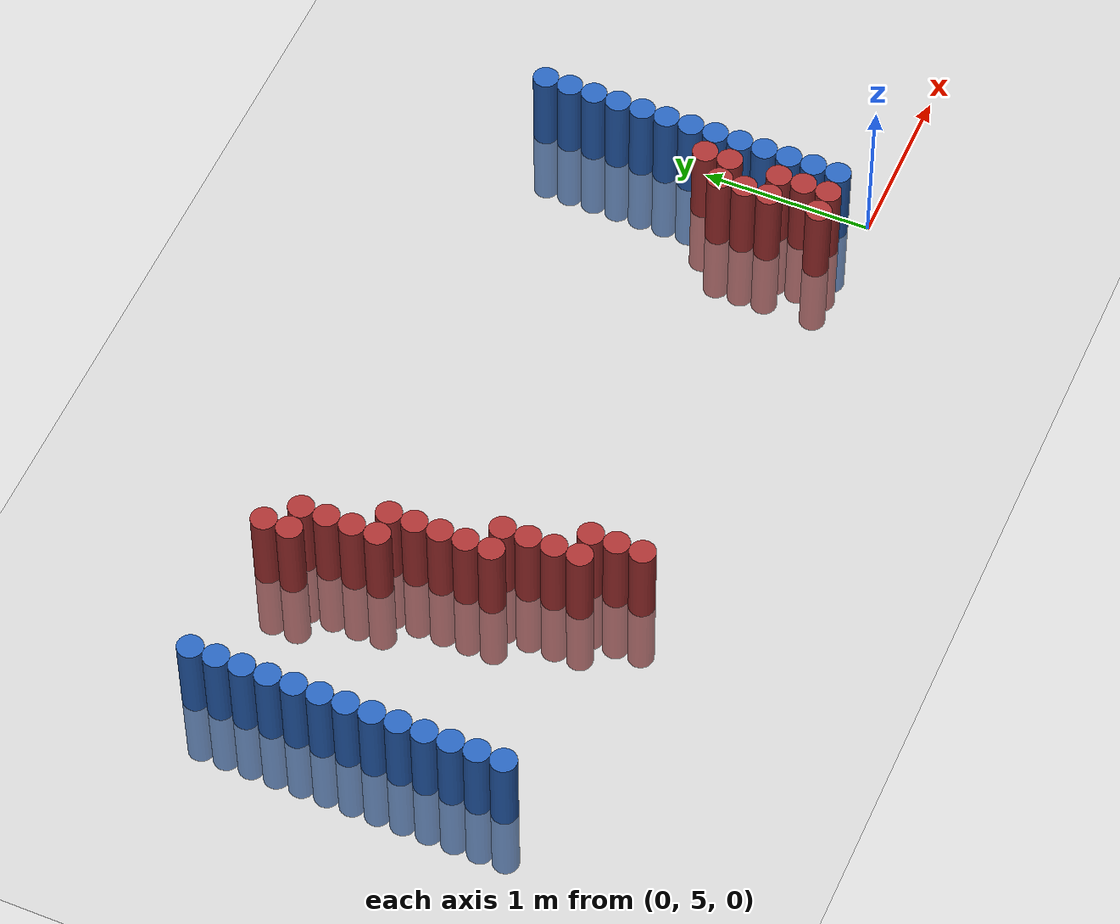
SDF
<sdf version="1.6">
 <world name="default">
  <model name="ground_plane">
   <static>1</static>
   <link name="link">
    <collision name="collision">
     <geometry><plane><normal>0 0 1</normal><size>100 100</size></plane></geometry>
     <surface><friction><ode><mu>100</mu><mu2>50</mu2></ode></friction></surface>
    </collision>
    <visual name="visual">
     <cast_shadows>0</cast_shadows>
     <geometry><plane><normal>0 0 1</normal><size>100 100</size></plane></geometry>
     <material>
      <script><uri>file://media/materials/scripts/gazebo.material</uri><name>Gazebo/Grey</name></script>
     </material>
    </visual>
   </link>
  </model>
  <model name="unit_cylinder_97">
   <static>1</static>
   <pose>-4.425000 5.325000 0.000000 0.000000 0.000000 0.000000</pose>
   <link name="link">
    <inertial>
     <mass>1</mass>
     <inertia><ixx>0.145833</ixx><ixy>0</ixy><ixz>0</ixz><iyy>0.145833</iyy><iyz>0</iyz><izz>0.125</izz></inertia>
    </inertial>
    <collision name="collision">
     <geometry><cylinder><radius>0.075000</radius><length>1</length></cylinder></geometry>
    </collision>
    <visual name="visual">
     <geometry><cylinder><radius>0.075000</radius><length>1</length></cylinder></geometry>
     <material>
      <ambient>0.152000 0.379000 0.720000 1</ambient>
      <diffuse>0.152000 0.379000 0.720000 1</diffuse>
     </material>
     <material>
      <script><name>Gazebo/Grey</name><uri>file://media/materials/scripts/gazebo.material</uri></script>
     </material>
    </visual>
   </link>
  </model>
  <model name="unit_cylinder_98">
   <static>1</static>
   <pose>-4.425000 5.475000 0.000000 0.000000 0.000000 0.000000</pose>
   <link name="link">
    <inertial>
     <mass>1</mass>
     <inertia><ixx>0.145833</ixx><ixy>0</ixy><ixz>0</ixz><iyy>0.145833</iyy><iyz>0</iyz><izz>0.125</izz></inertia>
    </inertial>
    <collision name="collision">
     <geometry><cylinder><radius>0.075000</radius><length>1</length></cylinder></geometry>
    </collision>
    <visual name="visual">
     <geometry><cylinder><radius>0.075000</radius><length>1</length></cylinder></geometry>
     <material>
      <ambient>0.152000 0.379000 0.720000 1</ambient>
      <diffuse>0.152000 0.379000 0.720000 1</diffuse>
     </material>
     <material>
      <script><name>Gazebo/Grey</name><uri>file://media/materials/scripts/gazebo.material</uri></script>
     </material>
    </visual>
   </link>
  </model>
  <model name="unit_cylinder_99">
   <static>1</static>
   <pose>-4.425000 5.625000 0.000000 0.000000 0.000000 0.000000</pose>
   <link name="link">
    <inertial>
     <mass>1</mass>
     <inertia><ixx>0.145833</ixx><ixy>0</ixy><ixz>0</ixz><iyy>0.145833</iyy><iyz>0</iyz><izz>0.125</izz></inertia>
    </inertial>
    <collision name="collision">
     <geometry><cylinder><radius>0.075000</radius><length>1</length></cylinder></geometry>
    </collision>
    <visual name="visual">
     <geometry><cylinder><radius>0.075000</radius><length>1</length></cylinder></geometry>
     <material>
      <ambient>0.152000 0.379000 0.720000 1</ambient>
      <diffuse>0.152000 0.379000 0.720000 1</diffuse>
     </material>
     <material>
      <script><name>Gazebo/Grey</name><uri>file://media/materials/scripts/gazebo.material</uri></script>
     </material>
    </visual>
   </link>
  </model>
  <model name="unit_cylinder_100">
   <static>1</static>
   <pose>-4.425000 5.775000 0.000000 0.000000 0.000000 0.000000</pose>
   <link name="link">
    <inertial>
     <mass>1</mass>
     <inertia><ixx>0.145833</ixx><ixy>0</ixy><ixz>0</ixz><iyy>0.145833</iyy><iyz>0</iyz><izz>0.125</izz></inertia>
    </inertial>
    <collision name="collision">
     <geometry><cylinder><radius>0.075000</radius><length>1</length></cylinder></geometry>
    </collision>
    <visual name="visual">
     <geometry><cylinder><radius>0.075000</radius><length>1</length></cylinder></geometry>
     <material>
      <ambient>0.152000 0.379000 0.720000 1</ambient>
      <diffuse>0.152000 0.379000 0.720000 1</diffuse>
     </material>
     <material>
      <script><name>Gazebo/Grey</name><uri>file://media/materials/scripts/gazebo.material</uri></script>
     </material>
    </visual>
   </link>
  </model>
  <model name="unit_cylinder_101">
   <static>1</static>
   <pose>-4.425000 5.925000 0.000000 0.000000 0.000000 0.000000</pose>
   <link name="link">
    <inertial>
     <mass>1</mass>
     <inertia><ixx>0.145833</ixx><ixy>0</ixy><ixz>0</ixz><iyy>0.145833</iyy><iyz>0</iyz><izz>0.125</izz></inertia>
    </inertial>
    <collision name="collision">
     <geometry><cylinder><radius>0.075000</radius><length>1</length></cylinder></geometry>
    </collision>
    <visual name="visual">
     <geometry><cylinder><radius>0.075000</radius><length>1</length></cylinder></geometry>
     <material>
      <ambient>0.152000 0.379000 0.720000 1</ambient>
      <diffuse>0.152000 0.379000 0.720000 1</diffuse>
     </material>
     <material>
      <script><name>Gazebo/Grey</name><uri>file://media/materials/scripts/gazebo.material</uri></script>
     </material>
    </visual>
   </link>
  </model>
  <model name="unit_cylinder_102">
   <static>1</static>
   <pose>-4.425000 6.075000 0.000000 0.000000 0.000000 0.000000</pose>
   <link name="link">
    <inertial>
     <mass>1</mass>
     <inertia><ixx>0.145833</ixx><ixy>0</ixy><ixz>0</ixz><iyy>0.145833</iyy><iyz>0</iyz><izz>0.125</izz></inertia>
    </inertial>
    <collision name="collision">
     <geometry><cylinder><radius>0.075000</radius><length>1</length></cylinder></geometry>
    </collision>
    <visual name="visual">
     <geometry><cylinder><radius>0.075000</radius><length>1</length></cylinder></geometry>
     <material>
      <ambient>0.152000 0.379000 0.720000 1</ambient>
      <diffuse>0.152000 0.379000 0.720000 1</diffuse>
     </material>
     <material>
      <script><name>Gazebo/Grey</name><uri>file://media/materials/scripts/gazebo.material</uri></script>
     </material>
    </visual>
   </link>
  </model>
  <model name="unit_cylinder_103">
   <static>1</static>
   <pose>-4.425000 6.225000 0.000000 0.000000 0.000000 0.000000</pose>
   <link name="link">
    <inertial>
     <mass>1</mass>
     <inertia><ixx>0.145833</ixx><ixy>0</ixy><ixz>0</ixz><iyy>0.145833</iyy><iyz>0</iyz><izz>0.125</izz></inertia>
    </inertial>
    <collision name="collision">
     <geometry><cylinder><radius>0.075000</radius><length>1</length></cylinder></geometry>
    </collision>
    <visual name="visual">
     <geometry><cylinder><radius>0.075000</radius><length>1</length></cylinder></geometry>
     <material>
      <ambient>0.152000 0.379000 0.720000 1</ambient>
      <diffuse>0.152000 0.379000 0.720000 1</diffuse>
     </material>
     <material>
      <script><name>Gazebo/Grey</name><uri>file://media/materials/scripts/gazebo.material</uri></script>
     </material>
    </visual>
   </link>
  </model>
  <model name="unit_cylinder_104">
   <static>1</static>
   <pose>-4.425000 6.375000 0.000000 0.000000 0.000000 0.000000</pose>
   <link name="link">
    <inertial>
     <mass>1</mass>
     <inertia><ixx>0.145833</ixx><ixy>0</ixy><ixz>0</ixz><iyy>0.145833</iyy><iyz>0</iyz><izz>0.125</izz></inertia>
    </inertial>
    <collision name="collision">
     <geometry><cylinder><radius>0.075000</radius><length>1</length></cylinder></geometry>
    </collision>
    <visual name="visual">
     <geometry><cylinder><radius>0.075000</radius><length>1</length></cylinder></geometry>
     <material>
      <ambient>0.152000 0.379000 0.720000 1</ambient>
      <diffuse>0.152000 0.379000 0.720000 1</diffuse>
     </material>
     <material>
      <script><name>Gazebo/Grey</name><uri>file://media/materials/scripts/gazebo.material</uri></script>
     </material>
    </visual>
   </link>
  </model>
  <model name="unit_cylinder_105">
   <static>1</static>
   <pose>-4.425000 6.525000 0.000000 0.000000 0.000000 0.000000</pose>
   <link name="link">
    <inertial>
     <mass>1</mass>
     <inertia><ixx>0.145833</ixx><ixy>0</ixy><ixz>0</ixz><iyy>0.145833</iyy><iyz>0</iyz><izz>0.125</izz></inertia>
    </inertial>
    <collision name="collision">
     <geometry><cylinder><radius>0.075000</radius><length>1</length></cylinder></geometry>
    </collision>
    <visual name="visual">
     <geometry><cylinder><radius>0.075000</radius><length>1</length></cylinder></geometry>
     <material>
      <ambient>0.152000 0.379000 0.720000 1</ambient>
      <diffuse>0.152000 0.379000 0.720000 1</diffuse>
     </material>
     <material>
      <script><name>Gazebo/Grey</name><uri>file://media/materials/scripts/gazebo.material</uri></script>
     </material>
    </visual>
   </link>
  </model>
  <model name="unit_cylinder_106">
   <static>1</static>
   <pose>-4.425000 6.675000 0.000000 0.000000 0.000000 0.000000</pose>
   <link name="link">
    <inertial>
     <mass>1</mass>
     <inertia><ixx>0.145833</ixx><ixy>0</ixy><ixz>0</ixz><iyy>0.145833</iyy><iyz>0</iyz><izz>0.125</izz></inertia>
    </inertial>
    <collision name="collision">
     <geometry><cylinder><radius>0.075000</radius><length>1</length></cylinder></geometry>
    </collision>
    <visual name="visual">
     <geometry><cylinder><radius>0.075000</radius><length>1</length></cylinder></geometry>
     <material>
      <ambient>0.152000 0.379000 0.720000 1</ambient>
      <diffuse>0.152000 0.379000 0.720000 1</diffuse>
     </material>
     <material>
      <script><name>Gazebo/Grey</name><uri>file://media/materials/scripts/gazebo.material</uri></script>
     </material>
    </visual>
   </link>
  </model>
  <model name="unit_cylinder_107">
   <static>1</static>
   <pose>-4.425000 6.825000 0.000000 0.000000 0.000000 0.000000</pose>
   <link name="link">
    <inertial>
     <mass>1</mass>
     <inertia><ixx>0.145833</ixx><ixy>0</ixy><ixz>0</ixz><iyy>0.145833</iyy><iyz>0</iyz><izz>0.125</izz></inertia>
    </inertial>
    <collision name="collision">
     <geometry><cylinder><radius>0.075000</radius><length>1</length></cylinder></geometry>
    </collision>
    <visual name="visual">
     <geometry><cylinder><radius>0.075000</radius><length>1</length></cylinder></geometry>
     <material>
      <ambient>0.152000 0.379000 0.720000 1</ambient>
      <diffuse>0.152000 0.379000 0.720000 1</diffuse>
     </material>
     <material>
      <script><name>Gazebo/Grey</name><uri>file://media/materials/scripts/gazebo.material</uri></script>
     </material>
    </visual>
   </link>
  </model>
  <model name="unit_cylinder_108">
   <static>1</static>
   <pose>-4.425000 6.975000 0.000000 0.000000 0.000000 0.000000</pose>
   <link name="link">
    <inertial>
     <mass>1</mass>
     <inertia><ixx>0.145833</ixx><ixy>0</ixy><ixz>0</ixz><iyy>0.145833</iyy><iyz>0</iyz><izz>0.125</izz></inertia>
    </inertial>
    <collision name="collision">
     <geometry><cylinder><radius>0.075000</radius><length>1</length></cylinder></geometry>
    </collision>
    <visual name="visual">
     <geometry><cylinder><radius>0.075000</radius><length>1</length></cylinder></geometry>
     <material>
      <ambient>0.152000 0.379000 0.720000 1</ambient>
      <diffuse>0.152000 0.379000 0.720000 1</diffuse>
     </material>
     <material>
      <script><name>Gazebo/Grey</name><uri>file://media/materials/scripts/gazebo.material</uri></script>
     </material>
    </visual>
   </link>
  </model>
  <model name="unit_cylinder_109">
   <static>1</static>
   <pose>-4.425000 7.125000 0.000000 0.000000 0.000000 0.000000</pose>
   <link name="link">
    <inertial>
     <mass>1</mass>
     <inertia><ixx>0.145833</ixx><ixy>0</ixy><ixz>0</ixz><iyy>0.145833</iyy><iyz>0</iyz><izz>0.125</izz></inertia>
    </inertial>
    <collision name="collision">
     <geometry><cylinder><radius>0.075000</radius><length>1</length></cylinder></geometry>
    </collision>
    <visual name="visual">
     <geometry><cylinder><radius>0.075000</radius><length>1</length></cylinder></geometry>
     <material>
      <ambient>0.152000 0.379000 0.720000 1</ambient>
      <diffuse>0.152000 0.379000 0.720000 1</diffuse>
     </material>
     <material>
      <script><name>Gazebo/Grey</name><uri>file://media/materials/scripts/gazebo.material</uri></script>
     </material>
    </visual>
   </link>
  </model>
  <model name="unit_cylinder_142">
   <static>1</static>
   <pose>-3.525000 6.975000 0.000000 0.000000 0.000000 0.000000</pose>
   <link name="link">
    <inertial>
     <mass>1</mass>
     <inertia><ixx>0.145833</ixx><ixy>0</ixy><ixz>0</ixz><iyy>0.145833</iyy><iyz>0</iyz><izz>0.125</izz></inertia>
    </inertial>
    <collision name="collision">
     <geometry><cylinder><radius>0.075000</radius><length>1</length></cylinder></geometry>
    </collision>
    <visual name="visual">
     <geometry><cylinder><radius>0.075000</radius><length>1</length></cylinder></geometry>
     <material>
      <ambient>0.648000 0.192000 0.192000 1</ambient>
      <diffuse>0.648000 0.192000 0.192000 1</diffuse>
     </material>
     <material>
      <script><name>Gazebo/Grey</name><uri>file://media/materials/scripts/gazebo.material</uri></script>
     </material>
    </visual>
   </link>
  </model>
  <model name="unit_cylinder_143">
   <static>1</static>
   <pose>-3.525000 7.125000 0.000000 0.000000 0.000000 0.000000</pose>
   <link name="link">
    <inertial>
     <mass>1</mass>
     <inertia><ixx>0.145833</ixx><ixy>0</ixy><ixz>0</ixz><iyy>0.145833</iyy><iyz>0</iyz><izz>0.125</izz></inertia>
    </inertial>
    <collision name="collision">
     <geometry><cylinder><radius>0.075000</radius><length>1</length></cylinder></geometry>
    </collision>
    <visual name="visual">
     <geometry><cylinder><radius>0.075000</radius><length>1</length></cylinder></geometry>
     <material>
      <ambient>0.648000 0.192000 0.192000 1</ambient>
      <diffuse>0.648000 0.192000 0.192000 1</diffuse>
     </material>
     <material>
      <script><name>Gazebo/Grey</name><uri>file://media/materials/scripts/gazebo.material</uri></script>
     </material>
    </visual>
   </link>
  </model>
  <model name="unit_cylinder_151">
   <static>1</static>
   <pose>-3.375000 6.525000 0.000000 0.000000 0.000000 0.000000</pose>
   <link name="link">
    <inertial>
     <mass>1</mass>
     <inertia><ixx>0.145833</ixx><ixy>0</ixy><ixz>0</ixz><iyy>0.145833</iyy><iyz>0</iyz><izz>0.125</izz></inertia>
    </inertial>
    <collision name="collision">
     <geometry><cylinder><radius>0.075000</radius><length>1</length></cylinder></geometry>
    </collision>
    <visual name="visual">
     <geometry><cylinder><radius>0.075000</radius><length>1</length></cylinder></geometry>
     <material>
      <ambient>0.648000 0.192000 0.192000 1</ambient>
      <diffuse>0.648000 0.192000 0.192000 1</diffuse>
     </material>
     <material>
      <script><name>Gazebo/Grey</name><uri>file://media/materials/scripts/gazebo.material</uri></script>
     </material>
    </visual>
   </link>
  </model>
  <model name="unit_cylinder_152">
   <static>1</static>
   <pose>-3.375000 6.675000 0.000000 0.000000 0.000000 0.000000</pose>
   <link name="link">
    <inertial>
     <mass>1</mass>
     <inertia><ixx>0.145833</ixx><ixy>0</ixy><ixz>0</ixz><iyy>0.145833</iyy><iyz>0</iyz><izz>0.125</izz></inertia>
    </inertial>
    <collision name="collision">
     <geometry><cylinder><radius>0.075000</radius><length>1</length></cylinder></geometry>
    </collision>
    <visual name="visual">
     <geometry><cylinder><radius>0.075000</radius><length>1</length></cylinder></geometry>
     <material>
      <ambient>0.648000 0.192000 0.192000 1</ambient>
      <diffuse>0.648000 0.192000 0.192000 1</diffuse>
     </material>
     <material>
      <script><name>Gazebo/Grey</name><uri>file://media/materials/scripts/gazebo.material</uri></script>
     </material>
    </visual>
   </link>
  </model>
  <model name="unit_cylinder_153">
   <static>1</static>
   <pose>-3.375000 6.825000 0.000000 0.000000 0.000000 0.000000</pose>
   <link name="link">
    <inertial>
     <mass>1</mass>
     <inertia><ixx>0.145833</ixx><ixy>0</ixy><ixz>0</ixz><iyy>0.145833</iyy><iyz>0</iyz><izz>0.125</izz></inertia>
    </inertial>
    <collision name="collision">
     <geometry><cylinder><radius>0.075000</radius><length>1</length></cylinder></geometry>
    </collision>
    <visual name="visual">
     <geometry><cylinder><radius>0.075000</radius><length>1</length></cylinder></geometry>
     <material>
      <ambient>0.648000 0.192000 0.192000 1</ambient>
      <diffuse>0.648000 0.192000 0.192000 1</diffuse>
     </material>
     <material>
      <script><name>Gazebo/Grey</name><uri>file://media/materials/scripts/gazebo.material</uri></script>
     </material>
    </visual>
   </link>
  </model>
  <model name="unit_cylinder_154">
   <static>1</static>
   <pose>-3.375000 6.975000 0.000000 0.000000 0.000000 0.000000</pose>
   <link name="link">
    <inertial>
     <mass>1</mass>
     <inertia><ixx>0.145833</ixx><ixy>0</ixy><ixz>0</ixz><iyy>0.145833</iyy><iyz>0</iyz><izz>0.125</izz></inertia>
    </inertial>
    <collision name="collision">
     <geometry><cylinder><radius>0.075000</radius><length>1</length></cylinder></geometry>
    </collision>
    <visual name="visual">
     <geometry><cylinder><radius>0.075000</radius><length>1</length></cylinder></geometry>
     <material>
      <ambient>0.648000 0.192000 0.192000 1</ambient>
      <diffuse>0.648000 0.192000 0.192000 1</diffuse>
     </material>
     <material>
      <script><name>Gazebo/Grey</name><uri>file://media/materials/scripts/gazebo.material</uri></script>
     </material>
    </visual>
   </link>
  </model>
  <model name="unit_cylinder_160">
   <static>1</static>
   <pose>-3.225000 5.925000 0.000000 0.000000 0.000000 0.000000</pose>
   <link name="link">
    <inertial>
     <mass>1</mass>
     <inertia><ixx>0.145833</ixx><ixy>0</ixy><ixz>0</ixz><iyy>0.145833</iyy><iyz>0</iyz><izz>0.125</izz></inertia>
    </inertial>
    <collision name="collision">
     <geometry><cylinder><radius>0.075000</radius><length>1</length></cylinder></geometry>
    </collision>
    <visual name="visual">
     <geometry><cylinder><radius>0.075000</radius><length>1</length></cylinder></geometry>
     <material>
      <ambient>0.648000 0.192000 0.192000 1</ambient>
      <diffuse>0.648000 0.192000 0.192000 1</diffuse>
     </material>
     <material>
      <script><name>Gazebo/Grey</name><uri>file://media/materials/scripts/gazebo.material</uri></script>
     </material>
    </visual>
   </link>
  </model>
  <model name="unit_cylinder_161">
   <static>1</static>
   <pose>-3.225000 6.075000 0.000000 0.000000 0.000000 0.000000</pose>
   <link name="link">
    <inertial>
     <mass>1</mass>
     <inertia><ixx>0.145833</ixx><ixy>0</ixy><ixz>0</ixz><iyy>0.145833</iyy><iyz>0</iyz><izz>0.125</izz></inertia>
    </inertial>
    <collision name="collision">
     <geometry><cylinder><radius>0.075000</radius><length>1</length></cylinder></geometry>
    </collision>
    <visual name="visual">
     <geometry><cylinder><radius>0.075000</radius><length>1</length></cylinder></geometry>
     <material>
      <ambient>0.648000 0.192000 0.192000 1</ambient>
      <diffuse>0.648000 0.192000 0.192000 1</diffuse>
     </material>
     <material>
      <script><name>Gazebo/Grey</name><uri>file://media/materials/scripts/gazebo.material</uri></script>
     </material>
    </visual>
   </link>
  </model>
  <model name="unit_cylinder_162">
   <static>1</static>
   <pose>-3.225000 6.225000 0.000000 0.000000 0.000000 0.000000</pose>
   <link name="link">
    <inertial>
     <mass>1</mass>
     <inertia><ixx>0.145833</ixx><ixy>0</ixy><ixz>0</ixz><iyy>0.145833</iyy><iyz>0</iyz><izz>0.125</izz></inertia>
    </inertial>
    <collision name="collision">
     <geometry><cylinder><radius>0.075000</radius><length>1</length></cylinder></geometry>
    </collision>
    <visual name="visual">
     <geometry><cylinder><radius>0.075000</radius><length>1</length></cylinder></geometry>
     <material>
      <ambient>0.648000 0.192000 0.192000 1</ambient>
      <diffuse>0.648000 0.192000 0.192000 1</diffuse>
     </material>
     <material>
      <script><name>Gazebo/Grey</name><uri>file://media/materials/scripts/gazebo.material</uri></script>
     </material>
    </visual>
   </link>
  </model>
  <model name="unit_cylinder_163">
   <static>1</static>
   <pose>-3.225000 6.375000 0.000000 0.000000 0.000000 0.000000</pose>
   <link name="link">
    <inertial>
     <mass>1</mass>
     <inertia><ixx>0.145833</ixx><ixy>0</ixy><ixz>0</ixz><iyy>0.145833</iyy><iyz>0</iyz><izz>0.125</izz></inertia>
    </inertial>
    <collision name="collision">
     <geometry><cylinder><radius>0.075000</radius><length>1</length></cylinder></geometry>
    </collision>
    <visual name="visual">
     <geometry><cylinder><radius>0.075000</radius><length>1</length></cylinder></geometry>
     <material>
      <ambient>0.648000 0.192000 0.192000 1</ambient>
      <diffuse>0.648000 0.192000 0.192000 1</diffuse>
     </material>
     <material>
      <script><name>Gazebo/Grey</name><uri>file://media/materials/scripts/gazebo.material</uri></script>
     </material>
    </visual>
   </link>
  </model>
  <model name="unit_cylinder_164">
   <static>1</static>
   <pose>-3.225000 6.525000 0.000000 0.000000 0.000000 0.000000</pose>
   <link name="link">
    <inertial>
     <mass>1</mass>
     <inertia><ixx>0.145833</ixx><ixy>0</ixy><ixz>0</ixz><iyy>0.145833</iyy><iyz>0</iyz><izz>0.125</izz></inertia>
    </inertial>
    <collision name="collision">
     <geometry><cylinder><radius>0.075000</radius><length>1</length></cylinder></geometry>
    </collision>
    <visual name="visual">
     <geometry><cylinder><radius>0.075000</radius><length>1</length></cylinder></geometry>
     <material>
      <ambient>0.648000 0.192000 0.192000 1</ambient>
      <diffuse>0.648000 0.192000 0.192000 1</diffuse>
     </material>
     <material>
      <script><name>Gazebo/Grey</name><uri>file://media/materials/scripts/gazebo.material</uri></script>
     </material>
    </visual>
   </link>
  </model>
  <model name="unit_cylinder_168">
   <static>1</static>
   <pose>-3.075000 5.475000 0.000000 0.000000 0.000000 0.000000</pose>
   <link name="link">
    <inertial>
     <mass>1</mass>
     <inertia><ixx>0.145833</ixx><ixy>0</ixy><ixz>0</ixz><iyy>0.145833</iyy><iyz>0</iyz><izz>0.125</izz></inertia>
    </inertial>
    <collision name="collision">
     <geometry><cylinder><radius>0.075000</radius><length>1</length></cylinder></geometry>
    </collision>
    <visual name="visual">
     <geometry><cylinder><radius>0.075000</radius><length>1</length></cylinder></geometry>
     <material>
      <ambient>0.648000 0.192000 0.192000 1</ambient>
      <diffuse>0.648000 0.192000 0.192000 1</diffuse>
     </material>
     <material>
      <script><name>Gazebo/Grey</name><uri>file://media/materials/scripts/gazebo.material</uri></script>
     </material>
    </visual>
   </link>
  </model>
  <model name="unit_cylinder_169">
   <static>1</static>
   <pose>-3.075000 5.625000 0.000000 0.000000 0.000000 0.000000</pose>
   <link name="link">
    <inertial>
     <mass>1</mass>
     <inertia><ixx>0.145833</ixx><ixy>0</ixy><ixz>0</ixz><iyy>0.145833</iyy><iyz>0</iyz><izz>0.125</izz></inertia>
    </inertial>
    <collision name="collision">
     <geometry><cylinder><radius>0.075000</radius><length>1</length></cylinder></geometry>
    </collision>
    <visual name="visual">
     <geometry><cylinder><radius>0.075000</radius><length>1</length></cylinder></geometry>
     <material>
      <ambient>0.648000 0.192000 0.192000 1</ambient>
      <diffuse>0.648000 0.192000 0.192000 1</diffuse>
     </material>
     <material>
      <script><name>Gazebo/Grey</name><uri>file://media/materials/scripts/gazebo.material</uri></script>
     </material>
    </visual>
   </link>
  </model>
  <model name="unit_cylinder_170">
   <static>1</static>
   <pose>-3.075000 5.775000 0.000000 0.000000 0.000000 0.000000</pose>
   <link name="link">
    <inertial>
     <mass>1</mass>
     <inertia><ixx>0.145833</ixx><ixy>0</ixy><ixz>0</ixz><iyy>0.145833</iyy><iyz>0</iyz><izz>0.125</izz></inertia>
    </inertial>
    <collision name="collision">
     <geometry><cylinder><radius>0.075000</radius><length>1</length></cylinder></geometry>
    </collision>
    <visual name="visual">
     <geometry><cylinder><radius>0.075000</radius><length>1</length></cylinder></geometry>
     <material>
      <ambient>0.648000 0.192000 0.192000 1</ambient>
      <diffuse>0.648000 0.192000 0.192000 1</diffuse>
     </material>
     <material>
      <script><name>Gazebo/Grey</name><uri>file://media/materials/scripts/gazebo.material</uri></script>
     </material>
    </visual>
   </link>
  </model>
  <model name="unit_cylinder_171">
   <static>1</static>
   <pose>-3.075000 5.925000 0.000000 0.000000 0.000000 0.000000</pose>
   <link name="link">
    <inertial>
     <mass>1</mass>
     <inertia><ixx>0.145833</ixx><ixy>0</ixy><ixz>0</ixz><iyy>0.145833</iyy><iyz>0</iyz><izz>0.125</izz></inertia>
    </inertial>
    <collision name="collision">
     <geometry><cylinder><radius>0.075000</radius><length>1</length></cylinder></geometry>
    </collision>
    <visual name="visual">
     <geometry><cylinder><radius>0.075000</radius><length>1</length></cylinder></geometry>
     <material>
      <ambient>0.648000 0.192000 0.192000 1</ambient>
      <diffuse>0.648000 0.192000 0.192000 1</diffuse>
     </material>
     <material>
      <script><name>Gazebo/Grey</name><uri>file://media/materials/scripts/gazebo.material</uri></script>
     </material>
    </visual>
   </link>
  </model>
  <model name="unit_cylinder_174">
   <static>1</static>
   <pose>-2.925000 5.175000 0.000000 0.000000 0.000000 0.000000</pose>
   <link name="link">
    <inertial>
     <mass>1</mass>
     <inertia><ixx>0.145833</ixx><ixy>0</ixy><ixz>0</ixz><iyy>0.145833</iyy><iyz>0</iyz><izz>0.125</izz></inertia>
    </inertial>
    <collision name="collision">
     <geometry><cylinder><radius>0.075000</radius><length>1</length></cylinder></geometry>
    </collision>
    <visual name="visual">
     <geometry><cylinder><radius>0.075000</radius><length>1</length></cylinder></geometry>
     <material>
      <ambient>0.648000 0.192000 0.192000 1</ambient>
      <diffuse>0.648000 0.192000 0.192000 1</diffuse>
     </material>
     <material>
      <script><name>Gazebo/Grey</name><uri>file://media/materials/scripts/gazebo.material</uri></script>
     </material>
    </visual>
   </link>
  </model>
  <model name="unit_cylinder_175">
   <static>1</static>
   <pose>-2.925000 5.325000 0.000000 0.000000 0.000000 0.000000</pose>
   <link name="link">
    <inertial>
     <mass>1</mass>
     <inertia><ixx>0.145833</ixx><ixy>0</ixy><ixz>0</ixz><iyy>0.145833</iyy><iyz>0</iyz><izz>0.125</izz></inertia>
    </inertial>
    <collision name="collision">
     <geometry><cylinder><radius>0.075000</radius><length>1</length></cylinder></geometry>
    </collision>
    <visual name="visual">
     <geometry><cylinder><radius>0.075000</radius><length>1</length></cylinder></geometry>
     <material>
      <ambient>0.648000 0.192000 0.192000 1</ambient>
      <diffuse>0.648000 0.192000 0.192000 1</diffuse>
     </material>
     <material>
      <script><name>Gazebo/Grey</name><uri>file://media/materials/scripts/gazebo.material</uri></script>
     </material>
    </visual>
   </link>
  </model>
  <model name="unit_cylinder_176">
   <static>1</static>
   <pose>-2.925000 5.475000 0.000000 0.000000 0.000000 0.000000</pose>
   <link name="link">
    <inertial>
     <mass>1</mass>
     <inertia><ixx>0.145833</ixx><ixy>0</ixy><ixz>0</ixz><iyy>0.145833</iyy><iyz>0</iyz><izz>0.125</izz></inertia>
    </inertial>
    <collision name="collision">
     <geometry><cylinder><radius>0.075000</radius><length>1</length></cylinder></geometry>
    </collision>
    <visual name="visual">
     <geometry><cylinder><radius>0.075000</radius><length>1</length></cylinder></geometry>
     <material>
      <ambient>0.648000 0.192000 0.192000 1</ambient>
      <diffuse>0.648000 0.192000 0.192000 1</diffuse>
     </material>
     <material>
      <script><name>Gazebo/Grey</name><uri>file://media/materials/scripts/gazebo.material</uri></script>
     </material>
    </visual>
   </link>
  </model>
  <model name="unit_cylinder_221">
   <static>1</static>
   <pose>-0.375000 5.175000 0.000000 0.000000 0.000000 0.000000</pose>
   <link name="link">
    <inertial>
     <mass>1</mass>
     <inertia><ixx>0.145833</ixx><ixy>0</ixy><ixz>0</ixz><iyy>0.145833</iyy><iyz>0</iyz><izz>0.125</izz></inertia>
    </inertial>
    <collision name="collision">
     <geometry><cylinder><radius>0.075000</radius><length>1</length></cylinder></geometry>
    </collision>
    <visual name="visual">
     <geometry><cylinder><radius>0.075000</radius><length>1</length></cylinder></geometry>
     <material>
      <ambient>0.648000 0.192000 0.192000 1</ambient>
      <diffuse>0.648000 0.192000 0.192000 1</diffuse>
     </material>
     <material>
      <script><name>Gazebo/Grey</name><uri>file://media/materials/scripts/gazebo.material</uri></script>
     </material>
    </visual>
   </link>
  </model>
  <model name="unit_cylinder_222">
   <static>1</static>
   <pose>-0.375000 5.475000 0.000000 0.000000 0.000000 0.000000</pose>
   <link name="link">
    <inertial>
     <mass>1</mass>
     <inertia><ixx>0.145833</ixx><ixy>0</ixy><ixz>0</ixz><iyy>0.145833</iyy><iyz>0</iyz><izz>0.125</izz></inertia>
    </inertial>
    <collision name="collision">
     <geometry><cylinder><radius>0.075000</radius><length>1</length></cylinder></geometry>
    </collision>
    <visual name="visual">
     <geometry><cylinder><radius>0.075000</radius><length>1</length></cylinder></geometry>
     <material>
      <ambient>0.648000 0.192000 0.192000 1</ambient>
      <diffuse>0.648000 0.192000 0.192000 1</diffuse>
     </material>
     <material>
      <script><name>Gazebo/Grey</name><uri>file://media/materials/scripts/gazebo.material</uri></script>
     </material>
    </visual>
   </link>
  </model>
  <model name="unit_cylinder_223">
   <static>1</static>
   <pose>-0.375000 5.625000 0.000000 0.000000 0.000000 0.000000</pose>
   <link name="link">
    <inertial>
     <mass>1</mass>
     <inertia><ixx>0.145833</ixx><ixy>0</ixy><ixz>0</ixz><iyy>0.145833</iyy><iyz>0</iyz><izz>0.125</izz></inertia>
    </inertial>
    <collision name="collision">
     <geometry><cylinder><radius>0.075000</radius><length>1</length></cylinder></geometry>
    </collision>
    <visual name="visual">
     <geometry><cylinder><radius>0.075000</radius><length>1</length></cylinder></geometry>
     <material>
      <ambient>0.648000 0.192000 0.192000 1</ambient>
      <diffuse>0.648000 0.192000 0.192000 1</diffuse>
     </material>
     <material>
      <script><name>Gazebo/Grey</name><uri>file://media/materials/scripts/gazebo.material</uri></script>
     </material>
    </visual>
   </link>
  </model>
  <model name="unit_cylinder_224">
   <static>1</static>
   <pose>-0.375000 5.775000 0.000000 0.000000 0.000000 0.000000</pose>
   <link name="link">
    <inertial>
     <mass>1</mass>
     <inertia><ixx>0.145833</ixx><ixy>0</ixy><ixz>0</ixz><iyy>0.145833</iyy><iyz>0</iyz><izz>0.125</izz></inertia>
    </inertial>
    <collision name="collision">
     <geometry><cylinder><radius>0.075000</radius><length>1</length></cylinder></geometry>
    </collision>
    <visual name="visual">
     <geometry><cylinder><radius>0.075000</radius><length>1</length></cylinder></geometry>
     <material>
      <ambient>0.648000 0.192000 0.192000 1</ambient>
      <diffuse>0.648000 0.192000 0.192000 1</diffuse>
     </material>
     <material>
      <script><name>Gazebo/Grey</name><uri>file://media/materials/scripts/gazebo.material</uri></script>
     </material>
    </visual>
   </link>
  </model>
  <model name="unit_cylinder_228">
   <static>1</static>
   <pose>-0.225000 5.175000 0.000000 0.000000 0.000000 0.000000</pose>
   <link name="link">
    <inertial>
     <mass>1</mass>
     <inertia><ixx>0.145833</ixx><ixy>0</ixy><ixz>0</ixz><iyy>0.145833</iyy><iyz>0</iyz><izz>0.125</izz></inertia>
    </inertial>
    <collision name="collision">
     <geometry><cylinder><radius>0.075000</radius><length>1</length></cylinder></geometry>
    </collision>
    <visual name="visual">
     <geometry><cylinder><radius>0.075000</radius><length>1</length></cylinder></geometry>
     <material>
      <ambient>0.648000 0.192000 0.192000 1</ambient>
      <diffuse>0.648000 0.192000 0.192000 1</diffuse>
     </material>
     <material>
      <script><name>Gazebo/Grey</name><uri>file://media/materials/scripts/gazebo.material</uri></script>
     </material>
    </visual>
   </link>
  </model>
  <model name="unit_cylinder_229">
   <static>1</static>
   <pose>-0.225000 5.325000 0.000000 0.000000 0.000000 0.000000</pose>
   <link name="link">
    <inertial>
     <mass>1</mass>
     <inertia><ixx>0.145833</ixx><ixy>0</ixy><ixz>0</ixz><iyy>0.145833</iyy><iyz>0</iyz><izz>0.125</izz></inertia>
    </inertial>
    <collision name="collision">
     <geometry><cylinder><radius>0.075000</radius><length>1</length></cylinder></geometry>
    </collision>
    <visual name="visual">
     <geometry><cylinder><radius>0.075000</radius><length>1</length></cylinder></geometry>
     <material>
      <ambient>0.648000 0.192000 0.192000 1</ambient>
      <diffuse>0.648000 0.192000 0.192000 1</diffuse>
     </material>
     <material>
      <script><name>Gazebo/Grey</name><uri>file://media/materials/scripts/gazebo.material</uri></script>
     </material>
    </visual>
   </link>
  </model>
  <model name="unit_cylinder_230">
   <static>1</static>
   <pose>-0.225000 5.475000 0.000000 0.000000 0.000000 0.000000</pose>
   <link name="link">
    <inertial>
     <mass>1</mass>
     <inertia><ixx>0.145833</ixx><ixy>0</ixy><ixz>0</ixz><iyy>0.145833</iyy><iyz>0</iyz><izz>0.125</izz></inertia>
    </inertial>
    <collision name="collision">
     <geometry><cylinder><radius>0.075000</radius><length>1</length></cylinder></geometry>
    </collision>
    <visual name="visual">
     <geometry><cylinder><radius>0.075000</radius><length>1</length></cylinder></geometry>
     <material>
      <ambient>0.648000 0.192000 0.192000 1</ambient>
      <diffuse>0.648000 0.192000 0.192000 1</diffuse>
     </material>
     <material>
      <script><name>Gazebo/Grey</name><uri>file://media/materials/scripts/gazebo.material</uri></script>
     </material>
    </visual>
   </link>
  </model>
  <model name="unit_cylinder_231">
   <static>1</static>
   <pose>-0.225000 5.775000 0.000000 0.000000 0.000000 0.000000</pose>
   <link name="link">
    <inertial>
     <mass>1</mass>
     <inertia><ixx>0.145833</ixx><ixy>0</ixy><ixz>0</ixz><iyy>0.145833</iyy><iyz>0</iyz><izz>0.125</izz></inertia>
    </inertial>
    <collision name="collision">
     <geometry><cylinder><radius>0.075000</radius><length>1</length></cylinder></geometry>
    </collision>
    <visual name="visual">
     <geometry><cylinder><radius>0.075000</radius><length>1</length></cylinder></geometry>
     <material>
      <ambient>0.648000 0.192000 0.192000 1</ambient>
      <diffuse>0.648000 0.192000 0.192000 1</diffuse>
     </material>
     <material>
      <script><name>Gazebo/Grey</name><uri>file://media/materials/scripts/gazebo.material</uri></script>
     </material>
    </visual>
   </link>
  </model>
  <model name="unit_cylinder_232">
   <static>1</static>
   <pose>-0.225000 5.925000 0.000000 0.000000 0.000000 0.000000</pose>
   <link name="link">
    <inertial>
     <mass>1</mass>
     <inertia><ixx>0.145833</ixx><ixy>0</ixy><ixz>0</ixz><iyy>0.145833</iyy><iyz>0</iyz><izz>0.125</izz></inertia>
    </inertial>
    <collision name="collision">
     <geometry><cylinder><radius>0.075000</radius><length>1</length></cylinder></geometry>
    </collision>
    <visual name="visual">
     <geometry><cylinder><radius>0.075000</radius><length>1</length></cylinder></geometry>
     <material>
      <ambient>0.648000 0.192000 0.192000 1</ambient>
      <diffuse>0.648000 0.192000 0.192000 1</diffuse>
     </material>
     <material>
      <script><name>Gazebo/Grey</name><uri>file://media/materials/scripts/gazebo.material</uri></script>
     </material>
    </visual>
   </link>
  </model>
  <model name="unit_cylinder_235">
   <static>1</static>
   <pose>-0.075000 5.175000 0.000000 0.000000 0.000000 0.000000</pose>
   <link name="link">
    <inertial>
     <mass>1</mass>
     <inertia><ixx>0.145833</ixx><ixy>0</ixy><ixz>0</ixz><iyy>0.145833</iyy><iyz>0</iyz><izz>0.125</izz></inertia>
    </inertial>
    <collision name="collision">
     <geometry><cylinder><radius>0.075000</radius><length>1</length></cylinder></geometry>
    </collision>
    <visual name="visual">
     <geometry><cylinder><radius>0.075000</radius><length>1</length></cylinder></geometry>
     <material>
      <ambient>0.152000 0.379000 0.720000 1</ambient>
      <diffuse>0.152000 0.379000 0.720000 1</diffuse>
     </material>
     <material>
      <script><name>Gazebo/Grey</name><uri>file://media/materials/scripts/gazebo.material</uri></script>
     </material>
    </visual>
   </link>
  </model>
  <model name="unit_cylinder_236">
   <static>1</static>
   <pose>-0.075000 5.325000 0.000000 0.000000 0.000000 0.000000</pose>
   <link name="link">
    <inertial>
     <mass>1</mass>
     <inertia><ixx>0.145833</ixx><ixy>0</ixy><ixz>0</ixz><iyy>0.145833</iyy><iyz>0</iyz><izz>0.125</izz></inertia>
    </inertial>
    <collision name="collision">
     <geometry><cylinder><radius>0.075000</radius><length>1</length></cylinder></geometry>
    </collision>
    <visual name="visual">
     <geometry><cylinder><radius>0.075000</radius><length>1</length></cylinder></geometry>
     <material>
      <ambient>0.152000 0.379000 0.720000 1</ambient>
      <diffuse>0.152000 0.379000 0.720000 1</diffuse>
     </material>
     <material>
      <script><name>Gazebo/Grey</name><uri>file://media/materials/scripts/gazebo.material</uri></script>
     </material>
    </visual>
   </link>
  </model>
  <model name="unit_cylinder_237">
   <static>1</static>
   <pose>-0.075000 5.475000 0.000000 0.000000 0.000000 0.000000</pose>
   <link name="link">
    <inertial>
     <mass>1</mass>
     <inertia><ixx>0.145833</ixx><ixy>0</ixy><ixz>0</ixz><iyy>0.145833</iyy><iyz>0</iyz><izz>0.125</izz></inertia>
    </inertial>
    <collision name="collision">
     <geometry><cylinder><radius>0.075000</radius><length>1</length></cylinder></geometry>
    </collision>
    <visual name="visual">
     <geometry><cylinder><radius>0.075000</radius><length>1</length></cylinder></geometry>
     <material>
      <ambient>0.152000 0.379000 0.720000 1</ambient>
      <diffuse>0.152000 0.379000 0.720000 1</diffuse>
     </material>
     <material>
      <script><name>Gazebo/Grey</name><uri>file://media/materials/scripts/gazebo.material</uri></script>
     </material>
    </visual>
   </link>
  </model>
  <model name="unit_cylinder_238">
   <static>1</static>
   <pose>-0.075000 5.625000 0.000000 0.000000 0.000000 0.000000</pose>
   <link name="link">
    <inertial>
     <mass>1</mass>
     <inertia><ixx>0.145833</ixx><ixy>0</ixy><ixz>0</ixz><iyy>0.145833</iyy><iyz>0</iyz><izz>0.125</izz></inertia>
    </inertial>
    <collision name="collision">
     <geometry><cylinder><radius>0.075000</radius><length>1</length></cylinder></geometry>
    </collision>
    <visual name="visual">
     <geometry><cylinder><radius>0.075000</radius><length>1</length></cylinder></geometry>
     <material>
      <ambient>0.152000 0.379000 0.720000 1</ambient>
      <diffuse>0.152000 0.379000 0.720000 1</diffuse>
     </material>
     <material>
      <script><name>Gazebo/Grey</name><uri>file://media/materials/scripts/gazebo.material</uri></script>
     </material>
    </visual>
   </link>
  </model>
  <model name="unit_cylinder_239">
   <static>1</static>
   <pose>-0.075000 5.775000 0.000000 0.000000 0.000000 0.000000</pose>
   <link name="link">
    <inertial>
     <mass>1</mass>
     <inertia><ixx>0.145833</ixx><ixy>0</ixy><ixz>0</ixz><iyy>0.145833</iyy><iyz>0</iyz><izz>0.125</izz></inertia>
    </inertial>
    <collision name="collision">
     <geometry><cylinder><radius>0.075000</radius><length>1</length></cylinder></geometry>
    </collision>
    <visual name="visual">
     <geometry><cylinder><radius>0.075000</radius><length>1</length></cylinder></geometry>
     <material>
      <ambient>0.152000 0.379000 0.720000 1</ambient>
      <diffuse>0.152000 0.379000 0.720000 1</diffuse>
     </material>
     <material>
      <script><name>Gazebo/Grey</name><uri>file://media/materials/scripts/gazebo.material</uri></script>
     </material>
    </visual>
   </link>
  </model>
  <model name="unit_cylinder_240">
   <static>1</static>
   <pose>-0.075000 5.925000 0.000000 0.000000 0.000000 0.000000</pose>
   <link name="link">
    <inertial>
     <mass>1</mass>
     <inertia><ixx>0.145833</ixx><ixy>0</ixy><ixz>0</ixz><iyy>0.145833</iyy><iyz>0</iyz><izz>0.125</izz></inertia>
    </inertial>
    <collision name="collision">
     <geometry><cylinder><radius>0.075000</radius><length>1</length></cylinder></geometry>
    </collision>
    <visual name="visual">
     <geometry><cylinder><radius>0.075000</radius><length>1</length></cylinder></geometry>
     <material>
      <ambient>0.152000 0.379000 0.720000 1</ambient>
      <diffuse>0.152000 0.379000 0.720000 1</diffuse>
     </material>
     <material>
      <script><name>Gazebo/Grey</name><uri>file://media/materials/scripts/gazebo.material</uri></script>
     </material>
    </visual>
   </link>
  </model>
  <model name="unit_cylinder_241">
   <static>1</static>
   <pose>-0.075000 6.075000 0.000000 0.000000 0.000000 0.000000</pose>
   <link name="link">
    <inertial>
     <mass>1</mass>
     <inertia><ixx>0.145833</ixx><ixy>0</ixy><ixz>0</ixz><iyy>0.145833</iyy><iyz>0</iyz><izz>0.125</izz></inertia>
    </inertial>
    <collision name="collision">
     <geometry><cylinder><radius>0.075000</radius><length>1</length></cylinder></geometry>
    </collision>
    <visual name="visual">
     <geometry><cylinder><radius>0.075000</radius><length>1</length></cylinder></geometry>
     <material>
      <ambient>0.152000 0.379000 0.720000 1</ambient>
      <diffuse>0.152000 0.379000 0.720000 1</diffuse>
     </material>
     <material>
      <script><name>Gazebo/Grey</name><uri>file://media/materials/scripts/gazebo.material</uri></script>
     </material>
    </visual>
   </link>
  </model>
  <model name="unit_cylinder_242">
   <static>1</static>
   <pose>-0.075000 6.225000 0.000000 0.000000 0.000000 0.000000</pose>
   <link name="link">
    <inertial>
     <mass>1</mass>
     <inertia><ixx>0.145833</ixx><ixy>0</ixy><ixz>0</ixz><iyy>0.145833</iyy><iyz>0</iyz><izz>0.125</izz></inertia>
    </inertial>
    <collision name="collision">
     <geometry><cylinder><radius>0.075000</radius><length>1</length></cylinder></geometry>
    </collision>
    <visual name="visual">
     <geometry><cylinder><radius>0.075000</radius><length>1</length></cylinder></geometry>
     <material>
      <ambient>0.152000 0.379000 0.720000 1</ambient>
      <diffuse>0.152000 0.379000 0.720000 1</diffuse>
     </material>
     <material>
      <script><name>Gazebo/Grey</name><uri>file://media/materials/scripts/gazebo.material</uri></script>
     </material>
    </visual>
   </link>
  </model>
  <model name="unit_cylinder_243">
   <static>1</static>
   <pose>-0.075000 6.375000 0.000000 0.000000 0.000000 0.000000</pose>
   <link name="link">
    <inertial>
     <mass>1</mass>
     <inertia><ixx>0.145833</ixx><ixy>0</ixy><ixz>0</ixz><iyy>0.145833</iyy><iyz>0</iyz><izz>0.125</izz></inertia>
    </inertial>
    <collision name="collision">
     <geometry><cylinder><radius>0.075000</radius><length>1</length></cylinder></geometry>
    </collision>
    <visual name="visual">
     <geometry><cylinder><radius>0.075000</radius><length>1</length></cylinder></geometry>
     <material>
      <ambient>0.152000 0.379000 0.720000 1</ambient>
      <diffuse>0.152000 0.379000 0.720000 1</diffuse>
     </material>
     <material>
      <script><name>Gazebo/Grey</name><uri>file://media/materials/scripts/gazebo.material</uri></script>
     </material>
    </visual>
   </link>
  </model>
  <model name="unit_cylinder_244">
   <static>1</static>
   <pose>-0.075000 6.525000 0.000000 0.000000 0.000000 0.000000</pose>
   <link name="link">
    <inertial>
     <mass>1</mass>
     <inertia><ixx>0.145833</ixx><ixy>0</ixy><ixz>0</ixz><iyy>0.145833</iyy><iyz>0</iyz><izz>0.125</izz></inertia>
    </inertial>
    <collision name="collision">
     <geometry><cylinder><radius>0.075000</radius><length>1</length></cylinder></geometry>
    </collision>
    <visual name="visual">
     <geometry><cylinder><radius>0.075000</radius><length>1</length></cylinder></geometry>
     <material>
      <ambient>0.152000 0.379000 0.720000 1</ambient>
      <diffuse>0.152000 0.379000 0.720000 1</diffuse>
     </material>
     <material>
      <script><name>Gazebo/Grey</name><uri>file://media/materials/scripts/gazebo.material</uri></script>
     </material>
    </visual>
   </link>
  </model>
  <model name="unit_cylinder_245">
   <static>1</static>
   <pose>-0.075000 6.675000 0.000000 0.000000 0.000000 0.000000</pose>
   <link name="link">
    <inertial>
     <mass>1</mass>
     <inertia><ixx>0.145833</ixx><ixy>0</ixy><ixz>0</ixz><iyy>0.145833</iyy><iyz>0</iyz><izz>0.125</izz></inertia>
    </inertial>
    <collision name="collision">
     <geometry><cylinder><radius>0.075000</radius><length>1</length></cylinder></geometry>
    </collision>
    <visual name="visual">
     <geometry><cylinder><radius>0.075000</radius><length>1</length></cylinder></geometry>
     <material>
      <ambient>0.152000 0.379000 0.720000 1</ambient>
      <diffuse>0.152000 0.379000 0.720000 1</diffuse>
     </material>
     <material>
      <script><name>Gazebo/Grey</name><uri>file://media/materials/scripts/gazebo.material</uri></script>
     </material>
    </visual>
   </link>
  </model>
  <model name="unit_cylinder_246">
   <static>1</static>
   <pose>-0.075000 6.825000 0.000000 0.000000 0.000000 0.000000</pose>
   <link name="link">
    <inertial>
     <mass>1</mass>
     <inertia><ixx>0.145833</ixx><ixy>0</ixy><ixz>0</ixz><iyy>0.145833</iyy><iyz>0</iyz><izz>0.125</izz></inertia>
    </inertial>
    <collision name="collision">
     <geometry><cylinder><radius>0.075000</radius><length>1</length></cylinder></geometry>
    </collision>
    <visual name="visual">
     <geometry><cylinder><radius>0.075000</radius><length>1</length></cylinder></geometry>
     <material>
      <ambient>0.152000 0.379000 0.720000 1</ambient>
      <diffuse>0.152000 0.379000 0.720000 1</diffuse>
     </material>
     <material>
      <script><name>Gazebo/Grey</name><uri>file://media/materials/scripts/gazebo.material</uri></script>
     </material>
    </visual>
   </link>
  </model>
  <model name="unit_cylinder_247">
   <static>1</static>
   <pose>-0.075000 6.975000 0.000000 0.000000 0.000000 0.000000</pose>
   <link name="link">
    <inertial>
     <mass>1</mass>
     <inertia><ixx>0.145833</ixx><ixy>0</ixy><ixz>0</ixz><iyy>0.145833</iyy><iyz>0</iyz><izz>0.125</izz></inertia>
    </inertial>
    <collision name="collision">
     <geometry><cylinder><radius>0.075000</radius><length>1</length></cylinder></geometry>
    </collision>
    <visual name="visual">
     <geometry><cylinder><radius>0.075000</radius><length>1</length></cylinder></geometry>
     <material>
      <ambient>0.152000 0.379000 0.720000 1</ambient>
      <diffuse>0.152000 0.379000 0.720000 1</diffuse>
     </material>
     <material>
      <script><name>Gazebo/Grey</name><uri>file://media/materials/scripts/gazebo.material</uri></script>
     </material>
    </visual>
   </link>
  </model>
 </world>
</sdf>
